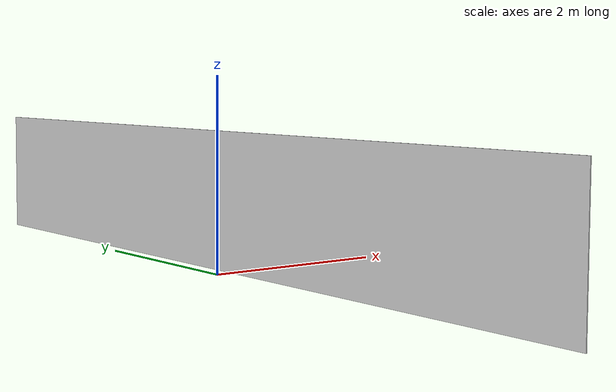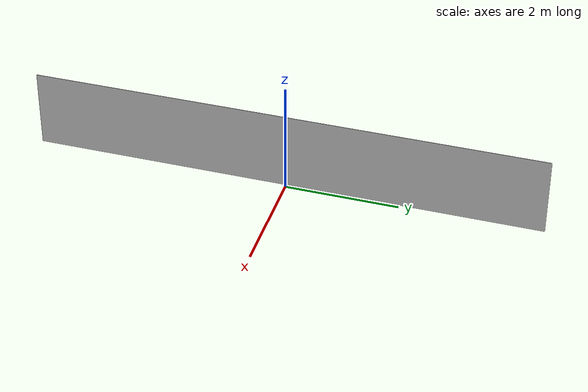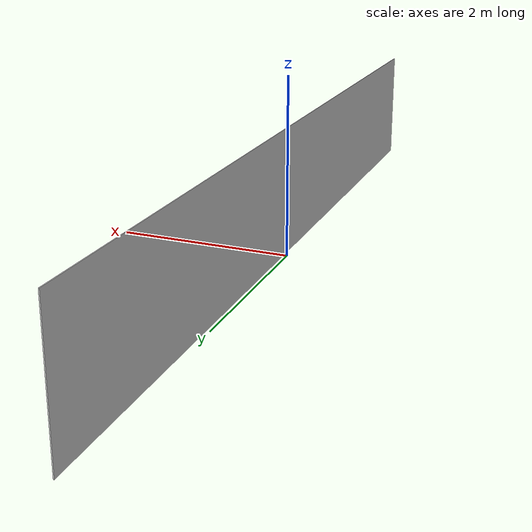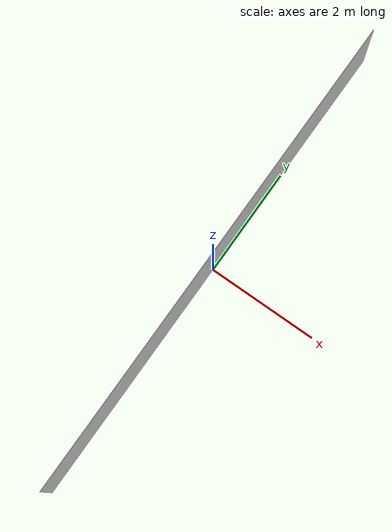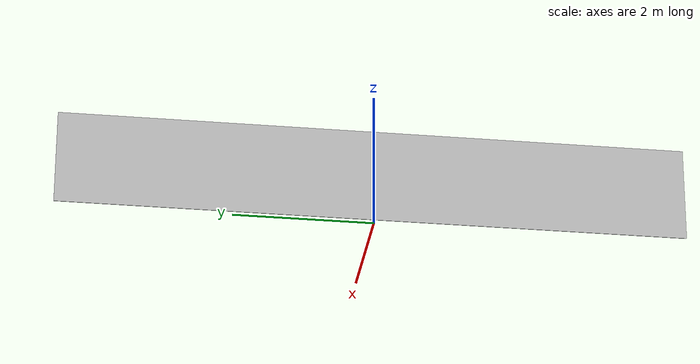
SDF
<?xml version="1.0" ?>
<sdf version="1.5">
  <model name="AIGC2_net">
    <static>true</static>
    <link name="link">
      <pose>0 0 0.75 0 0 0</pose>
      <collision name="collision">
        <geometry>
          <box>
            <size>0.01 9.0 1.3</size>
          </box>
        </geometry>
      </collision>
      <visual name="visual">
        <cast_shadows>false</cast_shadows>
        <geometry>
          <box>
            <size>0.01 9.0 1.4</size>
          </box>
        </geometry>
        <material>
          <script>
            <uri>model://AIGC2_net/materials/scripts</uri>
            <uri>model://AIGC2_net/materials/textures</uri>
            <name>vrc/tennis_net</name>
          </script>
        </material>
      </visual>
    </link>
  </model>
</sdf>
